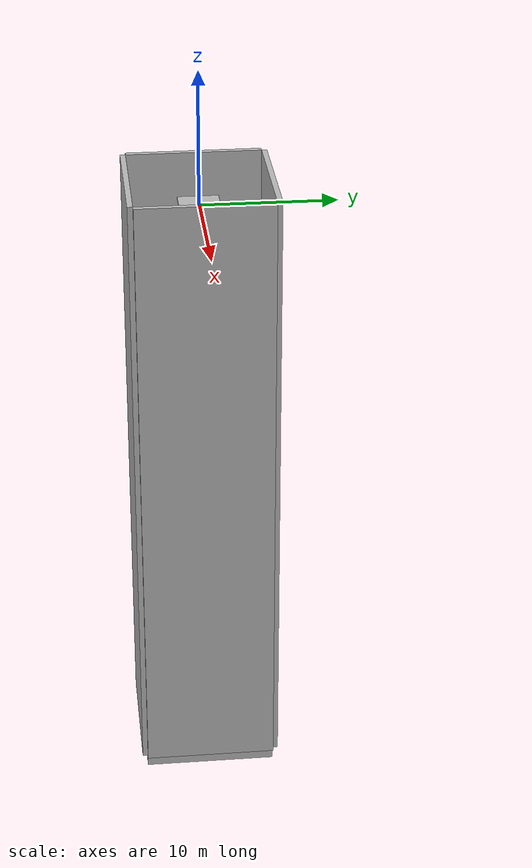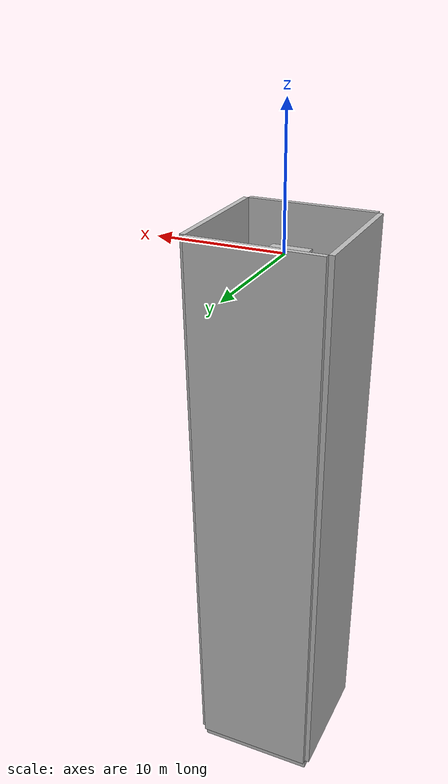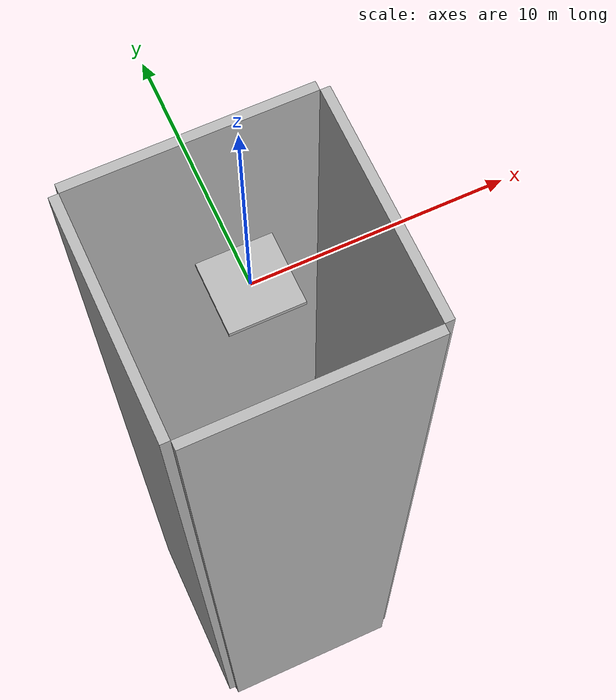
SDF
<?xml version="1.0"?>
<sdf version="1.6">
  <world name="shaft_45m_logic_sitl">
    <include><uri>model://sun</uri></include>
    <scene>
      <ambient>0.4 0.4 0.4 1</ambient>
      <background>0.06 0.06 0.07 1</background>
      <shadows>false</shadows>
    </scene>
    <!-- Entrance reference z=+0.25 m, bottom top z=-44.85 m.
         The downward Gazebo ray has only 30 m maximum range. -->
    <model name="shaft_launch_pad">
      <static>true</static><pose>0 0 0 0 0 0</pose>
      <link name="link">
        <collision name="collision"><geometry><box><size>3 3 0.2</size></box></geometry></collision>
        <visual name="visual"><geometry><box><size>3 3 0.2</size></box></geometry></visual>
      </link>
    </model>
    <model name="shaft_bottom">
      <static>true</static><pose>0 0 -45.35 0 0 0</pose>
      <link name="link">
        <collision name="collision"><geometry><box><size>10 10 1</size></box></geometry></collision>
        <visual name="visual"><geometry><box><size>10 10 1</size></box></geometry></visual>
      </link>
    </model>
    <model name="shaft_east_wall">
      <static>true</static><pose>5.2 0 -21.4 0 0 0</pose>
      <link name="link">
        <collision name="collision"><geometry><box><size>0.4 10 47</size></box></geometry></collision>
        <visual name="visual"><geometry><box><size>0.4 10 47</size></box></geometry></visual>
      </link>
    </model>
    <model name="shaft_west_wall">
      <static>true</static><pose>-5.2 0 -21.4 0 0 0</pose>
      <link name="link">
        <collision name="collision"><geometry><box><size>0.4 10 47</size></box></geometry></collision>
        <visual name="visual"><geometry><box><size>0.4 10 47</size></box></geometry></visual>
      </link>
    </model>
    <model name="shaft_north_wall">
      <static>true</static><pose>0 5.2 -21.4 0 0 0</pose>
      <link name="link">
        <collision name="collision"><geometry><box><size>10 0.4 47</size></box></geometry></collision>
        <visual name="visual"><geometry><box><size>10 0.4 47</size></box></geometry></visual>
      </link>
    </model>
    <model name="shaft_south_wall">
      <static>true</static><pose>0 -5.2 -21.4 0 0 0</pose>
      <link name="link">
        <collision name="collision"><geometry><box><size>10 0.4 47</size></box></geometry></collision>
        <visual name="visual"><geometry><box><size>10 0.4 47</size></box></geometry></visual>
      </link>
    </model>
  </world>
</sdf>
